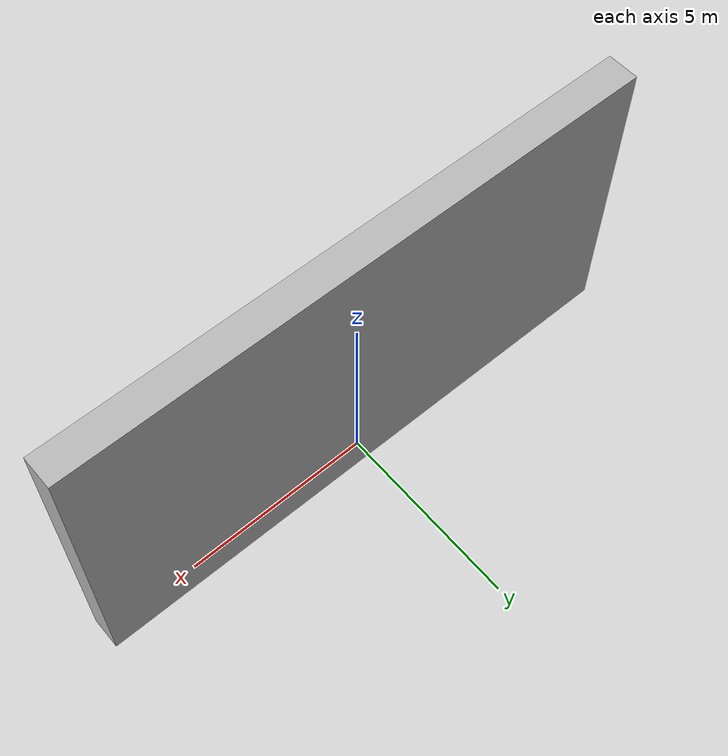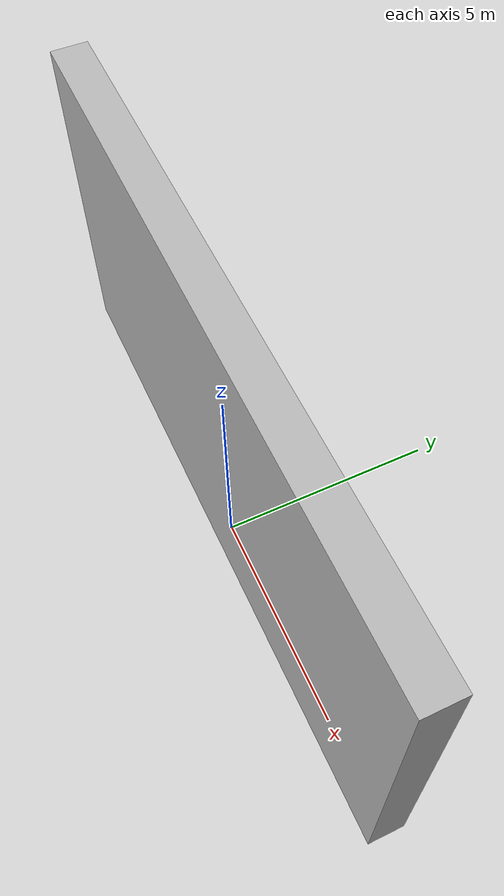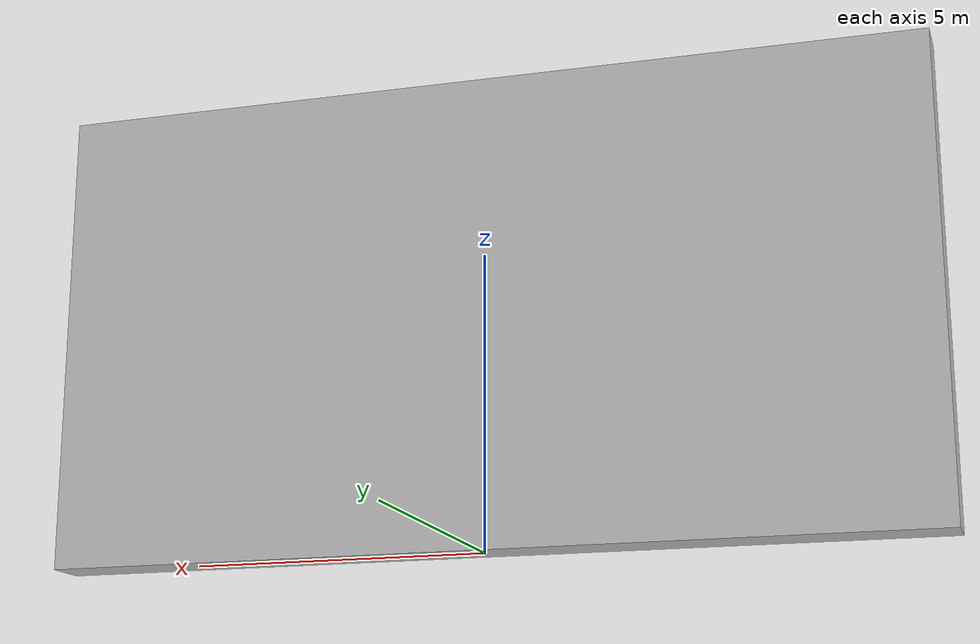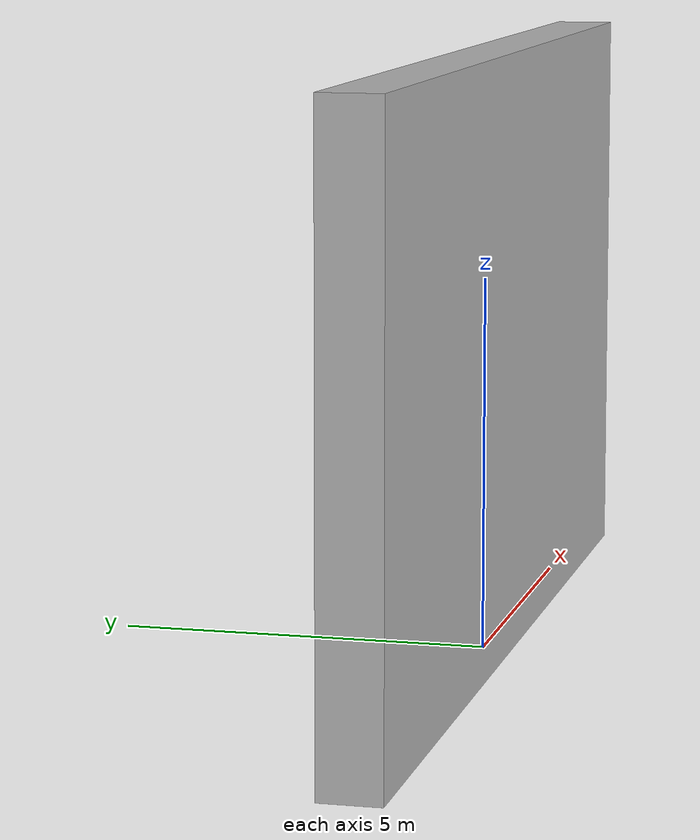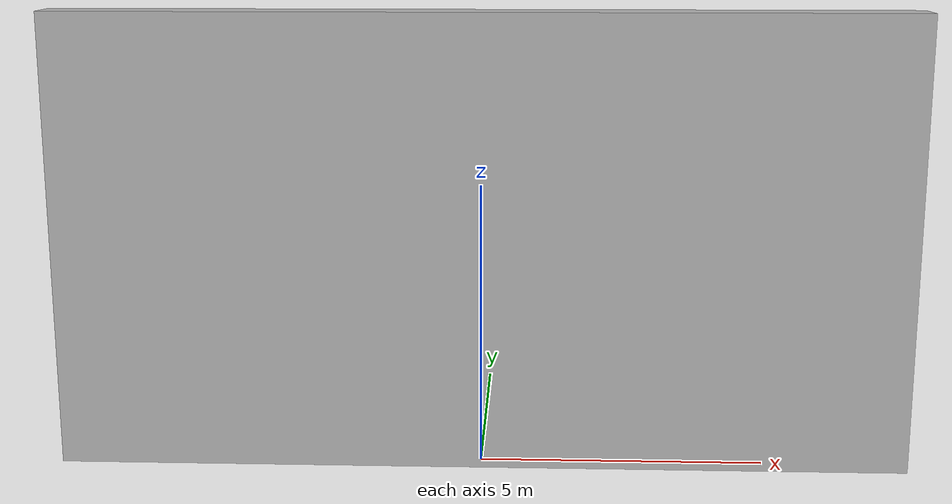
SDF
<?xml version="1.0" ?>
<sdf version="1.5">
  <model name="maze_wall_short">
    <static>true</static>
    <link name="link">
      <pose>0 0 4 0 0 0</pose>
      <collision name="collision_s">
        <geometry>
          <box>
            <size>15 0.8 8</size>
          </box>
        </geometry>
      </collision>
      <visual name="visual_s">
        <geometry>
          <box>
            <size>15 0.8 8</size>
          </box>
        </geometry>
        <material>
          <script>
            <uri>model://maze_wall_short/materials/scripts</uri>
            <uri>model://maze_wall_short/materials/textures</uri>
            <name>vrc/maze_wall_short</name>
          </script>
        </material>
      </visual>
    </link>
  </model>
</sdf>
